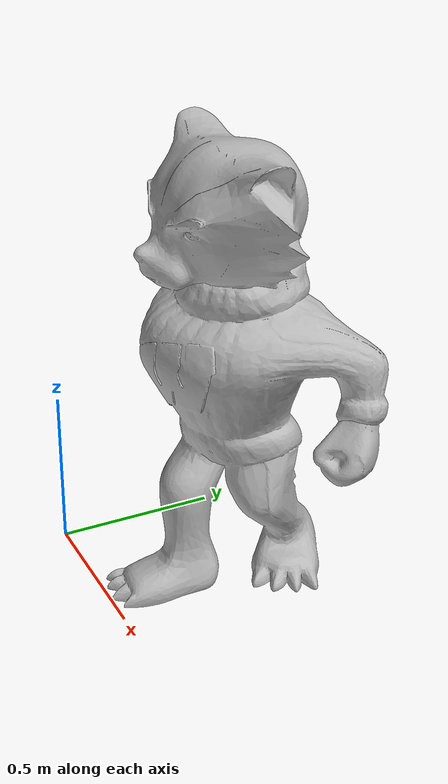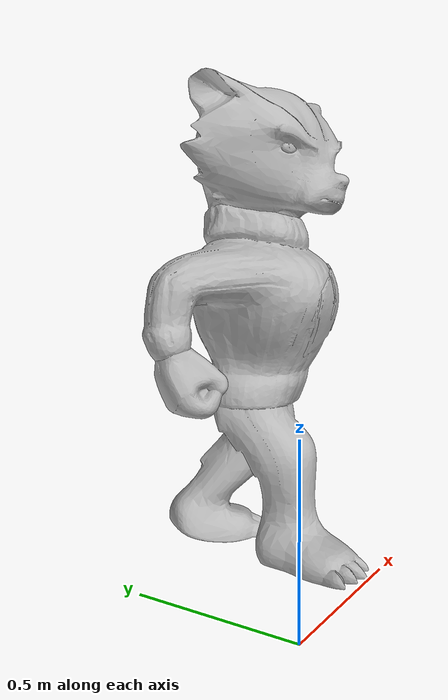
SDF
<?xml version='1.0'?>
<sdf version="1.5">
  <model name="bucky">
    <pose>0 0 0 0 0 0</pose>
    <static>true</static>
    <link name="link">
     <collision name="collision">
        <geometry>
          <mesh>
		  <uri>model://bucky/meshes/bucky.STL</uri>
		  <scale>0.2 0.2 0.2</scale>
	  </mesh>
	</geometry>
      </collision>
      <visual name="visual">
        <geometry>
          <mesh>
		  <uri>model://bucky/meshes/bucky.STL</uri>
		  <scale>0.2 0.2 0.2</scale>
          </mesh>
        </geometry>
      </visual>
    </link>
  </model>
</sdf>
